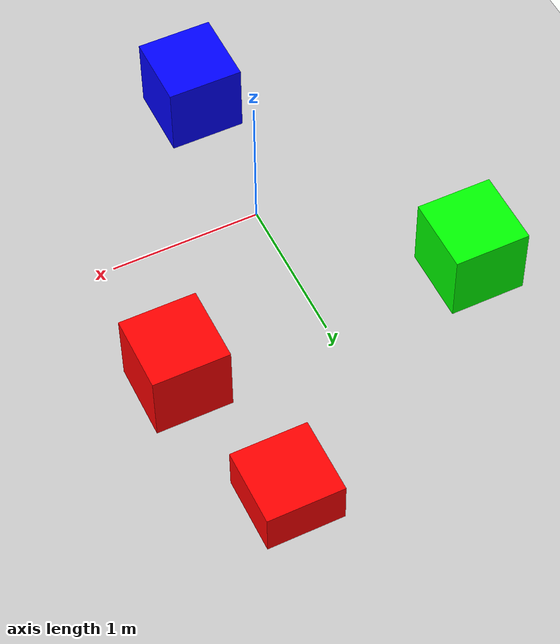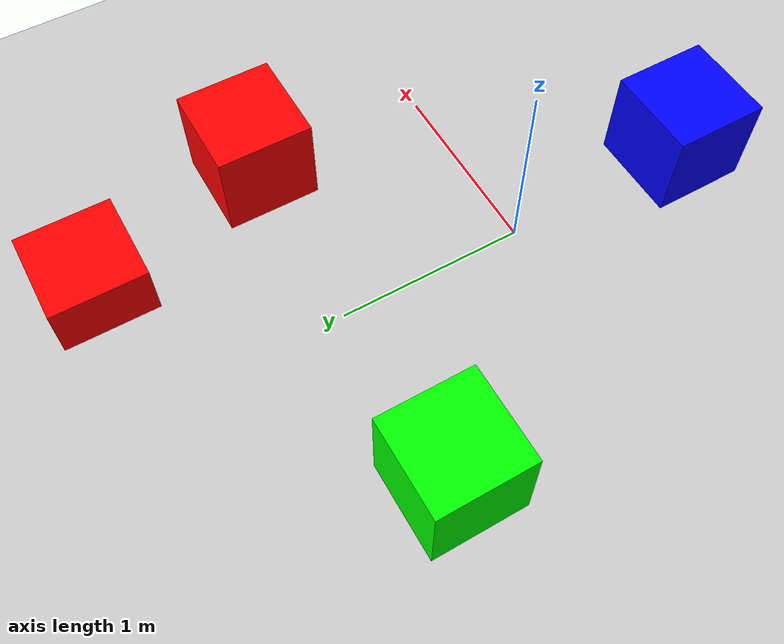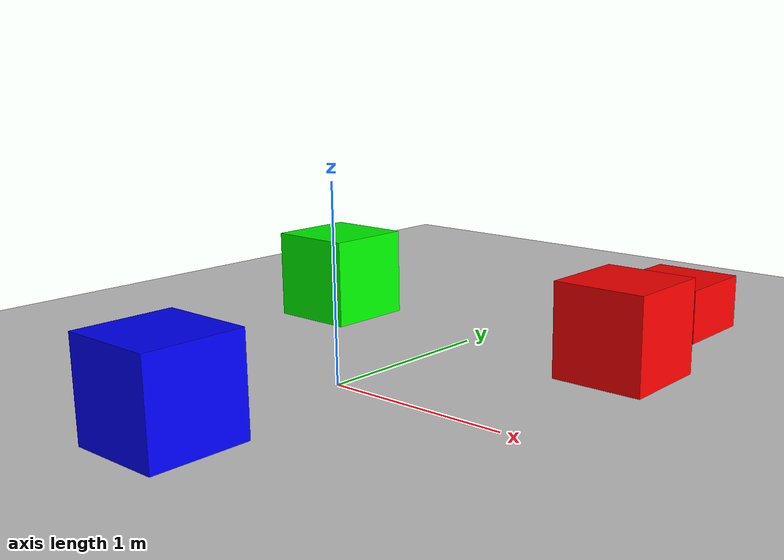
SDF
<sdf version="1.9">
 <world name="default">
  <plugin filename="ignition-gazebo-physics-system" name="ignition::gazebo::systems::Physics"/>
  <plugin filename="ignition-gazebo-scene-broadcaster-system" name="ignition::gazebo::systems::SceneBroadcaster"/>
  <plugin filename="ignition-gazebo-sensors-system" name="ignition::gazebo::systems::Sensors"/>
  <model name="ground_plane">
   <static>true</static>
   <link name="link">
    <collision name="collision"><geometry><plane><normal>0 0 1</normal></plane></geometry></collision>
    <visual name="visual">
     <geometry><plane><normal>0 0 1</normal><size>100 100</size></plane></geometry>
     <material>
      <ambient>0.8 0.8 0.8 1</ambient>
      <diffuse>0.8 0.8 0.8 1</diffuse>
      <specular>0.8 0.8 0.8 1</specular>
     </material>
    </visual>
   </link>
  </model>
  <model name="red_box">
   <pose>1 1 0.25 0 0 0</pose>
   <link name="link">
    <collision name="collision"><geometry><box><size>0.5 0.5 0.5</size></box></geometry></collision>
    <visual name="visual">
     <geometry><box><size>0.5 0.5 0.5</size></box></geometry>
     <material><ambient>1 0 0 1</ambient><diffuse>1 0 0 1</diffuse><specular>0.5 0.5 0.5 1</specular></material>
    </visual>
   </link>
  </model>
  <model name="red_box2">
   <pose>0.75 2 0.05 0 0 0</pose>
   <link name="link">
    <collision name="collision"><geometry><box><size>0.1 0.1 0.1</size></box></geometry></collision>
    <visual name="visual">
     <geometry><box><size>0.5 0.5 0.5</size></box></geometry>
     <material><ambient>1 0 0 1</ambient><diffuse>1 0 0 1</diffuse><specular>0.5 0.5 0.5 1</specular></material>
    </visual>
   </link>
  </model>
  <model name="green_box">
   <pose>-1 1 0.25 0 0 0</pose>
   <link name="link">
    <collision name="collision"><geometry><box><size>0.5 0.5 0.5</size></box></geometry></collision>
    <visual name="visual">
     <geometry><box><size>0.5 0.5 0.5</size></box></geometry>
     <material><ambient>0 1 0 1</ambient><diffuse>0 1 0 1</diffuse><specular>0.5 0.5 0.5 1</specular></material>
    </visual>
   </link>
  </model>
  <model name="blue_box">
   <pose>0 -1 0.25 0 0 0</pose>
   <link name="link">
    <collision name="collision"><geometry><box><size>0.5 0.5 0.5</size></box></geometry></collision>
    <visual name="visual">
     <geometry><box><size>0.5 0.5 0.5</size></box></geometry>
     <material><ambient>0 0 1 1</ambient><diffuse>0 0 1 1</diffuse><specular>0.5 0.5 0.5 1</specular></material>
    </visual>
   </link>
  </model>
  <light name="sun" type="directional">
   <pose>0 0 10 0 0 0</pose>
   <direction>-0.5 0.5 -1</direction>
   <diffuse>1 1 1 1</diffuse>
   <specular>0.5 0.5 0.5 1</specular>
   <attenuation>
    <range>1000</range>
    <constant>0.9</constant>
    <linear>0.01</linear>
    <quadratic>0.001</quadratic>
   </attenuation>
  </light>
 </world>
</sdf>
